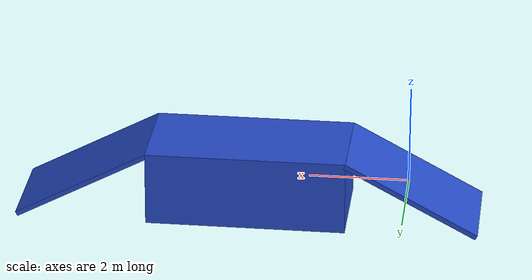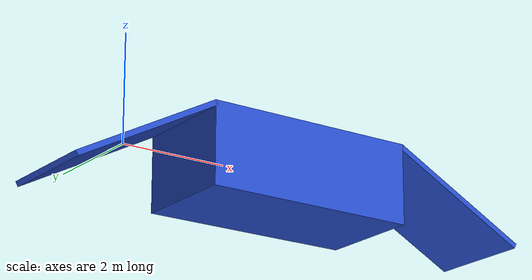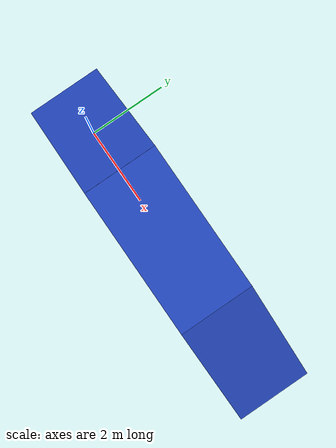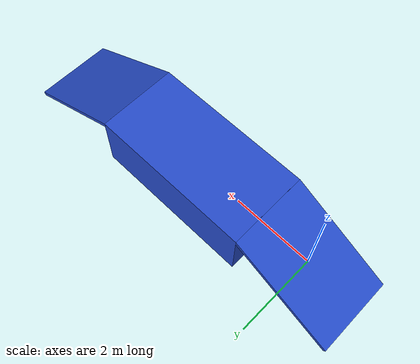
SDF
<?xml version="1.0" ?>
<sdf version="1.6">
  <model name="rampa_cubo">
    <link name="rampa">
      <pose>-0.1 0 0 0 2.65 0</pose> <!-- Posición y orientación de la rampa -->
      <visual name="visual">
        <geometry>
          <box>
            <size>3 2 0.1</size> <!-- Dimensiones de la rampa -->
          </box>
        </geometry>
        <material>
          <script>
            <uri>file://media/materials/scripts/gazebo.material</uri>
            <name>Gazebo/Blue</name> <!-- Material azul predefinido en Gazebo -->
          </script>
        </material>
      </visual>
      <collision name="collision">
        <geometry>
          <box>
            <size>3 2 0.1</size> <!-- Dimensiones de la rampa -->
          </box>
        </geometry>
      </collision>
      <static>true</static> <!-- Hacer que el objeto sea estático -->
    </link>
    <link name="cubo">
      <pose>3.2 0 0 0 0 0</pose> <!-- Posición del cubo -->
      <visual name="visual">
        <geometry>
          <box>
            <size>4 2 1.5</size> <!-- Dimensiones del cubo -->
          </box>
        </geometry>
        <material>
          <script>
            <uri>file://media/materials/scripts/gazebo.material</uri>
            <name>Gazebo/Blue</name> <!-- Material azul predefinido en Gazebo -->
          </script>
        </material>
      </visual>
      <collision name="collision">
        <geometry>
          <box>
            <size>4 2 1.5</size> <!-- Dimensiones del cubo -->
          </box>
        </geometry>
      </collision>
      <static>true</static> <!-- Hacer que el objeto sea estático -->
    </link>
    <link name="rampa2">
      <pose>6.5 0 0 0 0.49 0</pose> <!-- Posición y orientación de la rampa -->
      <visual name="visual">
        <geometry>
          <box>
            <size>3 2 0.1</size> <!-- Dimensiones de la rampa -->
          </box>
        </geometry>
        <material>
          <script>
            <uri>file://media/materials/scripts/gazebo.material</uri>
            <name>Gazebo/Blue</name> <!-- Material azul predefinido en Gazebo -->
          </script>
        </material>
      </visual>
      <collision name="collision">
        <geometry>
          <box>
            <size>3 2 0.1</size> <!-- Dimensiones de la rampa -->
          </box>
        </geometry>
      </collision>
      <static>true</static> <!-- Hacer que el objeto sea estático -->
    </link>
    <joint name="rampa_cubo" type="fixed">
      <parent>cubo</parent>
      <child>rampa</child>
      <pose>0 0 0 0 0 0</pose> <!-- Posición relativa de la rampa con respecto al cubo -->
    </joint>
    <joint name="rampa2_cubo" type="fixed">
      <parent>cubo</parent>
      <child>rampa2</child>
      <pose>0 0 0 0 0 0</pose> <!-- Posición relativa de la rampa con respecto al cubo -->
    </joint>
  </model>
</sdf>
